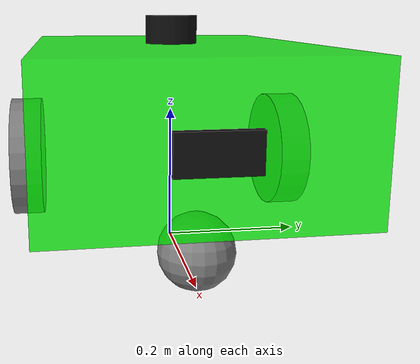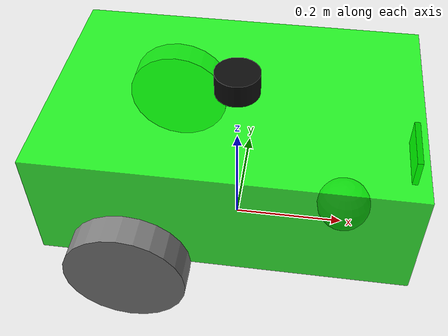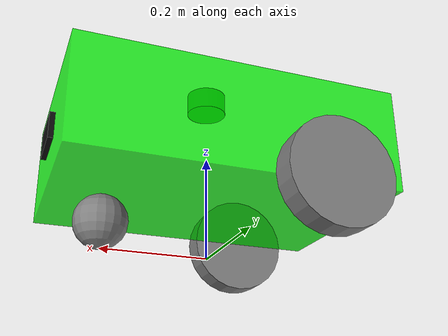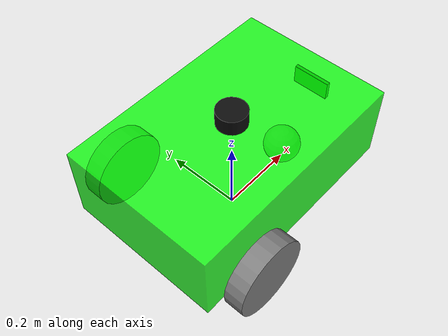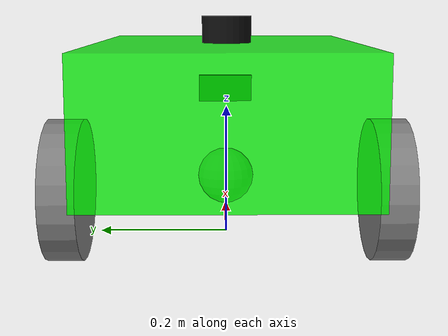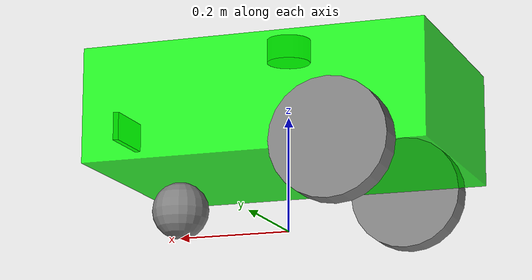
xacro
<?xml version="1.0"?>
<robot name="simple_diff_robot" xmlns:xacro="http://www.ros.org/wiki/xacro">
    <xacro:include filename="$(find simple_diff_robot_description)/urdf/common_properties.xacro" />
    <xacro:include filename="$(find simple_diff_robot_description)/urdf/mobile_base.xacro"/>
    <xacro:include filename="$(find simple_diff_robot_description)/urdf/mobile_base_gazebo.xacro"/>
    <xacro:include filename="$(find simple_diff_robot_description)/urdf/camera.xacro"/>
    <xacro:include filename="$(find simple_diff_robot_description)/urdf/lidar.xacro"/>

</robot>

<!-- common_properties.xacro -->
<robot xmlns:xacro="http://www.ros.org/wiki/xacro">
    <material name="blue">
        <color rgba="0 0 0.5 1" />
    </material>

    <material name="green">
        <color rgba="0 1.0 0 0.8" />
    </material>

    <material name="grey">
        <color rgba="0.5 0.5 0.5 1" />
    </material>

    <material name="black">
        <color rgba="0.05 0.05 0.05 1" />
    </material>

    <xacro:macro name="box_inertia" params="m l w h o_xyz o_rpy">
        <inertial>
            <origin xyz="${o_xyz}" rpy="${o_rpy}"/>
            <mass value="${m}"/>
            <inertia ixx="${m*(w*w + h*h)/12}" ixy="0.0" ixz="0.0" iyy="${m*(l*l + h*h)/12}" iyz="0.0" izz="${m*(w*w + l*l)/12}"/>
        </inertial>
    </xacro:macro>

    <xacro:macro name="sphere_inertia" params="m r o_xyz o_rpy">
        <inertial>
            <origin xyz="${o_xyz}" rpy="${o_rpy}"/>
            <mass value="${m}"/>
            <inertia ixx="${2*m*r*r/5}" ixy="0.0" ixz="0.0"
                     iyy="${2*m*r*r/5}" iyz="0.0"
                     izz="${2*m*r*r/5}"/>
        </inertial>
    </xacro:macro>

    <xacro:macro name="cylinder_inertia" params="m r l o_xyz o_rpy">
        <inertial>
            <origin xyz="${o_xyz}" rpy="${o_rpy}"/>
            <mass value="${m}"/>
            <inertia ixx="${m*(3*r*r + l*l)/12}" ixy="0.0" ixz="0.0"
                     iyy="${m*(3*r*r + l*l)/12}" iyz="0.0"
                     izz="${m*r*r/2}"/>
        </inertial>
    </xacro:macro>

</robot>

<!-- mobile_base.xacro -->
<robot xmlns:xacro="http://www.ros.org/wiki/xacro">
    <xacro:property name="base_length" value="0.6"/>
    <xacro:property name="base_width" value="0.4"/>
    <xacro:property name="base_height" value="0.2"/>
    <xacro:property name="wheel_radius" value="0.1"/>
    <xacro:property name="wheel_length" value="0.05"/>

    <xacro:macro name="wheel_link" params="prefix">
        <link name="${prefix}_wheel_link">
            <xacro:cylinder_inertia r="${wheel_radius}" l="${wheel_length}" m="1.0" o_xyz="0.0 0.0 0.0" o_rpy="${pi / 2.0} 0.0 0.0"/>
            <visual>
                <origin xyz="0.0 0.0 0.0" rpy="${pi / 2.0} 0.0 0.0"/>
                <geometry>
                    <cylinder radius="${wheel_radius}" length="${wheel_length}"/>
                </geometry>
                <material name="grey"/>
            </visual>
            <collision>
                <origin xyz="0.0 0.0 0.0" rpy="${pi / 2.0} 0.0 0.0"/>
                <geometry>
                    <sphere radius="${wheel_radius}"/>
                </geometry>
            </collision>
        </link>
    </xacro:macro>

    <link name="base_footprint"/>

    <link name="base_link">
        <xacro:box_inertia l="${base_length}" w="${base_width}" h="${base_height}" m="5.0" o_xyz="0.0 0.0 ${base_height / 2.0}" o_rpy="0.0 0.0 0.0"/>
        <visual>
            <geometry>
                <box size="${base_length} ${base_width} ${base_height}"/>
            </geometry>
            <origin xyz="0.0 0.0 ${base_height / 2.0}" rpy="0.0 0.0 0.0"/>
            <material name="green"/>
        </visual>
        <collision>
            <origin xyz="0.0 0.0 ${base_height / 2.0}" rpy="0.0 0.0 0.0"/>
            <geometry>
                <box size="${base_length} ${base_width} ${base_height}"/>
            </geometry>
        </collision>
    </link>

    <xacro:wheel_link prefix="right"/>
    <xacro:wheel_link prefix="left"/>

    <link name="caster_wheel_link">
        <xacro:sphere_inertia r="${wheel_radius / 2.0}" m="0.5" o_xyz="0.0 0.0 0.0" o_rpy="0.0 0.0 0.0"/>
        <visual>
            <origin xyz="0.0 0.0 0.0" rpy="0.0 0.0 0.0"/>
            <geometry>
                <sphere radius="${wheel_radius / 2.0}"/>
            </geometry>
            <material name="grey"/>
        </visual>
        <collision>
            <origin xyz="0.0 0.0 0.0" rpy="0.0 0.0 0.0"/>
            <geometry>
                <sphere radius="${wheel_radius / 2.0}"/>
            </geometry>
        </collision>
    </link>

    <joint name="base_joint" type="fixed">
        <parent link="base_footprint"/>
        <child link="base_link"/>
        <origin xyz="0.0 0.0 ${wheel_radius}" rpy="0.0 0.0 0.0"/>
    </joint>

    <joint name="base_right_wheel_joint" type="continuous">
        <parent link="base_link"/>
        <child link="right_wheel_link"/>
        <origin xyz="${-base_length / 4.0} ${-(base_width+wheel_length) / 2.0} 0.0" rpy="0.0 0.0 0.0"/>
        <axis xyz="0 1 0"/>
    </joint>

    <joint name="base_left_wheel_joint" type="continuous">
        <parent link="base_link"/>
        <child link="left_wheel_link"/>
        <axis xyz="0 1 0"/>
        <origin xyz="${-base_length / 4.0} ${(base_width+wheel_length) / 2.0} 0" rpy="0 0 0"/>
    </joint>

    <joint name="base_caster_wheel_joint" type="fixed">
        <parent link="base_link"/>
        <child link="caster_wheel_link"/>
        <origin xyz="${base_length / 3.0} 0.0 ${-wheel_radius / 2.0}" rpy="0.0 0.0 0.0"/>
    </joint>
</robot>

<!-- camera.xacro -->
<robot xmlns:xacro="http://www.ros.org/wiki/xacro">
    <xacro:property name="camera_length" value="0.01" />
    <xacro:property name="camera_width" value="0.1"/>
    <xacro:property name="camera_height" value="0.05" />

    <link name="camera_link">
        <xacro:box_inertia m="0.01" l="${camera_length}" w="${camera_width}" h="${camera_height}" o_xyz="0 0 0" o_rpy="0 0 0"/>
        <visual>
            <origin xyz="0.0 0.0 0.0" rpy="0.0 0.0 0.0"/>
            <geometry>
                <box size="${camera_length} ${camera_width} ${camera_height}"/>
            </geometry>
            <material name="black"/>
        </visual>
        <collision>
            <origin xyz="0.0 0.0 0.0" rpy="0.0 0.0 0.0"/>
            <geometry>
                <box size="${camera_length} ${camera_width} ${camera_height}"/>
            </geometry>
        </collision>
    </link>
    <joint name="base_camera_joint" type="fixed">
        <parent link="base_link"/>
        <child link="camera_link"/>
        <origin xyz="${(base_length + camera_length)/2.0} 0.0 ${base_height/2.0}" rpy="0.0 0.0 0.0"/>
    </joint>
    <gazebo reference="camera_link">
       <sensor name="front_camera_sensor" type="camera">
            <always_on>true</always_on>
            <update_rate>30</update_rate>
            <visualize>true</visualize>
            <topic>camera/image_raw</topic>
            <frame_id>camera_link</frame_id>
            <camera name="rgb_camera">
                <camera_info_camera>camera/camera_info</camera_info_camera>
                <horizontal_fov>1.3962634</horizontal_fov>
                <image>
                    <width>640</width>
                    <height>480</height>
                    <format>R8G8B8</format>
                </image>
                <clip>
                    <near>0.1</near>
                    <far>100</far>
                </clip>
                <noise>
                    <type>gaussian</type>
                    <mean>0</mean>
                    <stddev>0.001</stddev>
                </noise>
            </camera>
       </sensor>
    </gazebo>
</robot>

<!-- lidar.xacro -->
<robot xmlns:xacro="http://www.ros.org/wiki/xacro">

    <xacro:property name="lidar_radius" value="0.038" />
    <xacro:property name="lidar_length" value="0.041" />

    <link name="lidar_link">
        <xacro:cylinder_inertia m="0.19" r="${lidar_radius}" l="${lidar_length}"
                                o_xyz="0.0 0.0 ${lidar_length/2}" o_rpy="0.0 0.0 0.0"/>
        <visual>
            <origin xyz="0.0 0.0 ${lidar_length/2}" rpy="0.0 0.0 0.0"/>
            <geometry>
                <cylinder radius="${lidar_radius}" length="${lidar_length}"/>
            </geometry>
            <material name="black"/>
        </visual>
        <collision>
            <origin xyz="0.0 0.0 ${lidar_length/2}" rpy="0.0 0.0 0.0"/>
            <geometry>
                <cylinder radius="${lidar_radius}" length="${lidar_length}"/>
            </geometry>
        </collision>
    </link>

    <joint name="base_lidar_joint" type="fixed">
        <parent link="base_link"/>
        <child link="lidar_link"/>
        <origin xyz="0.0 0.0 ${base_height}" rpy="0.0 0.0 0.0"/>
    </joint>

    <gazebo reference="lidar_link">
        <sensor type="gpu_lidar" name="rplidar_a3">
        <always_on>true</always_on>
        <pose>0 0 0 0 0 0</pose>
        <visualize>true</visualize>
        <update_rate>10</update_rate>
        <topic>scan</topic>
        <gz_frame_id>lidar_link</gz_frame_id>
        <lidar>
            <scan>
                <horizontal>
                    <samples>1600</samples>
                    <resolution>1</resolution>
                    <min_angle>0</min_angle>
                    <max_angle>6.283185</max_angle>
                </horizontal>
            </scan>
            <range>
                <min>0.2</min>
                <max>20.0</max>
                <resolution>0.003927</resolution>
            </range>
            <noise>
                <type>gaussian</type>
                <mean>0.0</mean>
                <stddev>0.01</stddev>
            </noise>
        </lidar>
      </sensor>

    </gazebo>

</robot>
